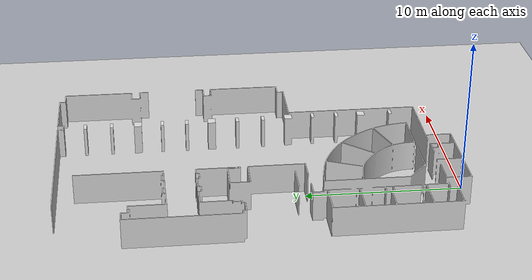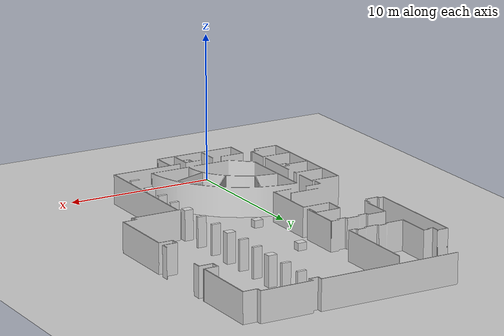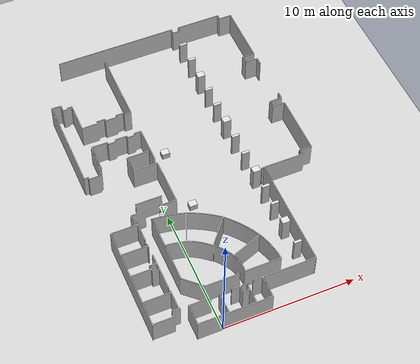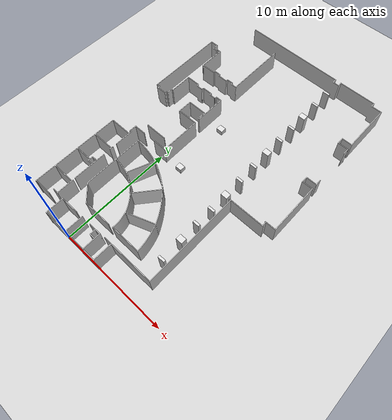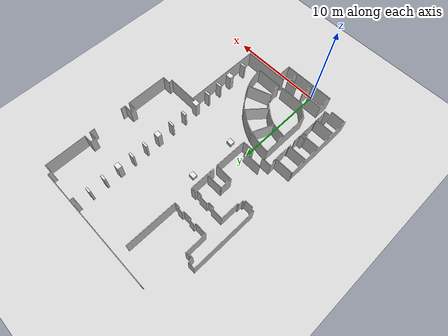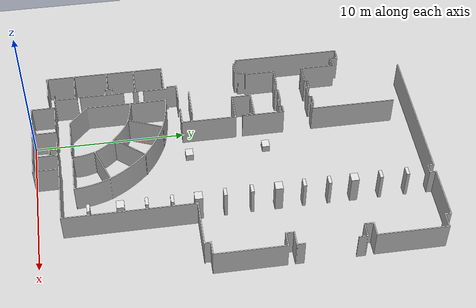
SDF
<?xml version="1.0" ?>
<sdf version="1.8">
  <world name="demo_world">
    <physics name="1ms" type="ignored">
      <max_step_size>0.001</max_step_size>
      <real_time_factor>1.0</real_time_factor>
    </physics>

    <model name="ground_plane">
      <static>true</static>
      <link name="link">
        <collision name="collision">
          <geometry>
            <plane>
              <normal>0 0 1</normal>
              <size>250 250</size>
            </plane>
          </geometry>
        </collision>
        <visual name="visual">
          <geometry>
            <plane>
              <normal>0 0 1</normal>
              <size>250 250</size>
            </plane>
          </geometry>
          <material>
            <ambient>0.8 0.8 0.8 1</ambient>
            <diffuse>0.8 0.8 0.8 1</diffuse>
            <specular>0.5 0.5 0.5 1</specular>
          </material>
        </visual>
      </link>
    </model>

    <model name="dp1f_map">
      <static>true</static>
      <pose>-11.4 -10.3 0 0 0 0</pose>

      <link name="map_link">
        <visual name="map_visual">
          <geometry>
            <mesh>
              <uri>package://syncai_demo_gz/models/dp1f/dp1f.stl</uri>
              <scale>0.1 0.1 0.1</scale>
            </mesh>
          </geometry>
        </visual>

        <collision name="map_collision">
          <geometry>
            <mesh>
              <uri>package://syncai_demo_gz/models/dp1f/dp1f.stl</uri>
              <scale>0.1 0.1 0.1</scale>
            </mesh>
          </geometry>
        </collision>
      </link>
    </model>
  </world>
</sdf>
